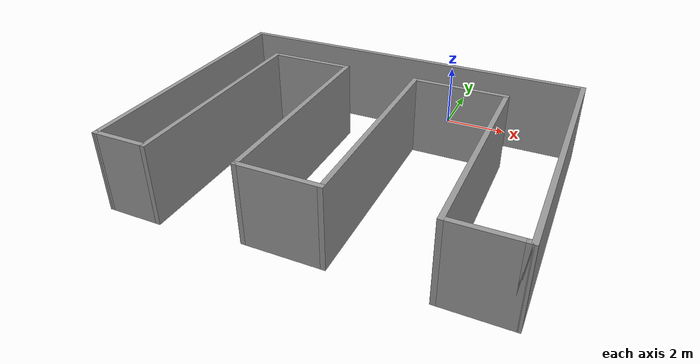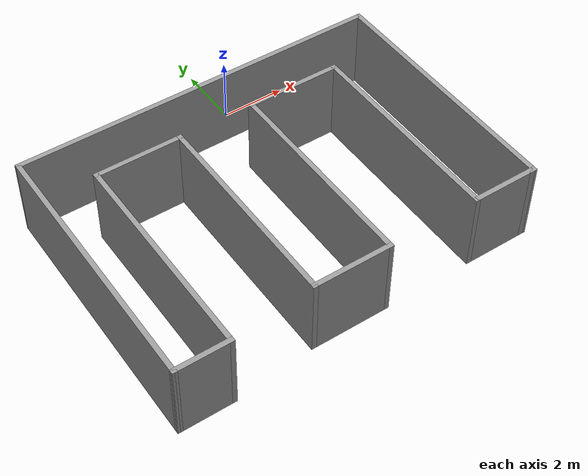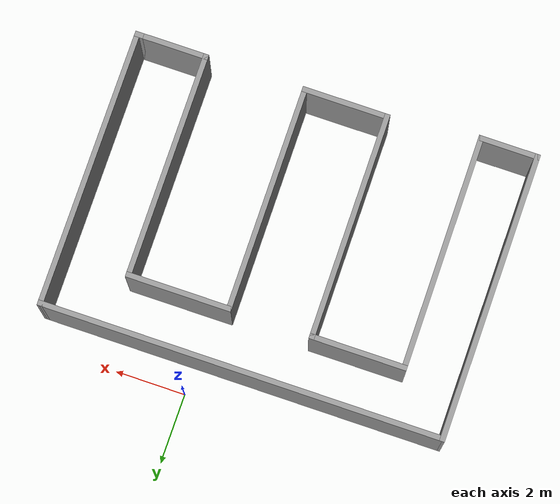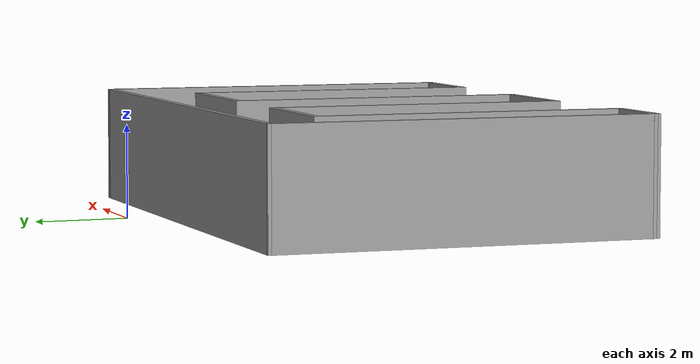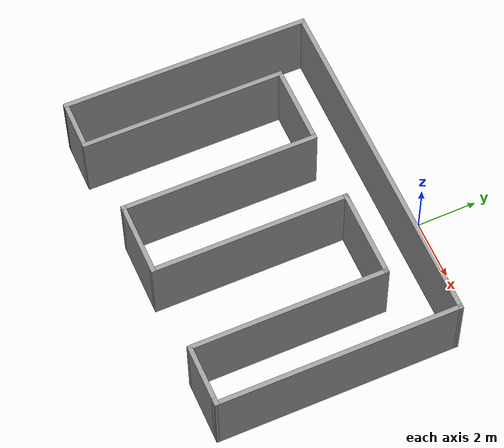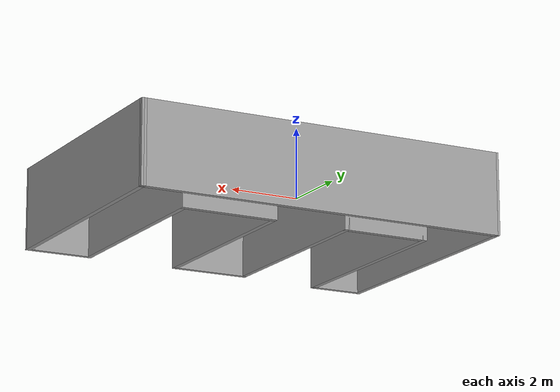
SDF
<?xml version='1.0'?>
<sdf version='1.6'>
  <model name='WorldM'>
    <pose frame=''>-1.40409 -4.88573 0 0 -0 0</pose>
    <link name='Wall_10'>
      <collision name='Wall_10_Collision'>
        <geometry>
          <box>
            <size>8.23259 0.15 2.5</size>
          </box>
        </geometry>
        <pose frame=''>0 0 1.25 0 -0 0</pose>
      </collision>
      <visual name='Wall_10_Visual'>
        <pose frame=''>0 0 1.25 0 -0 0</pose>
        <geometry>
          <box>
            <size>8.23259 0.15 2.5</size>
          </box>
        </geometry>
        <material>
          <script>
            <uri>file://media/materials/scripts/gazebo.material</uri>
            <name>Gazebo/Grey</name>
          </script>
          <ambient>1 1 1 1</ambient>
        </material>
        <meta>
          <layer>0</layer>
        </meta>
      </visual>
      <pose frame=''>-5.67492 0 0 0 0 -1.57512</pose>
    </link>
    <link name='Wall_11'>
      <collision name='Wall_11_Collision'>
        <geometry>
          <box>
            <size>1.75 0.15 2.5</size>
          </box>
        </geometry>
        <pose frame=''>0 0 1.25 0 -0 0</pose>
      </collision>
      <visual name='Wall_11_Visual'>
        <pose frame=''>0 0 1.25 0 -0 0</pose>
        <geometry>
          <box>
            <size>1.75 0.15 2.5</size>
          </box>
        </geometry>
        <material>
          <script>
            <uri>file://media/materials/scripts/gazebo.material</uri>
            <name>Gazebo/Grey</name>
          </script>
          <ambient>1 1 1 1</ambient>
        </material>
        <meta>
          <layer>0</layer>
        </meta>
      </visual>
      <pose frame=''>-4.89241 -4.04125 0 0 -0 0</pose>
    </link>
    <link name='Wall_12'>
      <collision name='Wall_12_Collision'>
        <geometry>
          <box>
            <size>6.75 0.15 2.5</size>
          </box>
        </geometry>
        <pose frame=''>0 0 1.25 0 -0 0</pose>
      </collision>
      <visual name='Wall_12_Visual'>
        <pose frame=''>0 0 1.25 0 -0 0</pose>
        <geometry>
          <box>
            <size>6.75 0.15 2.5</size>
          </box>
        </geometry>
        <material>
          <script>
            <uri>file://media/materials/scripts/gazebo.material</uri>
            <name>Gazebo/Grey</name>
          </script>
          <ambient>1 1 1 1</ambient>
        </material>
        <meta>
          <layer>0</layer>
        </meta>
      </visual>
      <pose frame=''>-4.09241 -0.741255 0 0 -0 1.5708</pose>
    </link>
    <link name='Wall_13'>
      <collision name='Wall_13_Collision'>
        <geometry>
          <box>
            <size>2.75 0.15 2.5</size>
          </box>
        </geometry>
        <pose frame=''>0 0 1.25 0 -0 0</pose>
      </collision>
      <visual name='Wall_13_Visual'>
        <pose frame=''>0 0 1.25 0 -0 0</pose>
        <geometry>
          <box>
            <size>2.75 0.15 2.5</size>
          </box>
        </geometry>
        <material>
          <script>
            <uri>file://media/materials/scripts/gazebo.material</uri>
            <name>Gazebo/Grey</name>
          </script>
          <ambient>1 1 1 1</ambient>
        </material>
        <meta>
          <layer>0</layer>
        </meta>
      </visual>
      <pose frame=''>-2.79241 2.55875 0 0 -0 0</pose>
    </link>
    <link name='Wall_14'>
      <collision name='Wall_14_Collision'>
        <geometry>
          <box>
            <size>6.5 0.15 2.5</size>
          </box>
        </geometry>
        <pose frame=''>0 0 1.25 0 -0 0</pose>
      </collision>
      <visual name='Wall_14_Visual'>
        <pose frame=''>0 0 1.25 0 -0 0</pose>
        <geometry>
          <box>
            <size>6.5 0.15 2.5</size>
          </box>
        </geometry>
        <material>
          <script>
            <uri>file://media/materials/scripts/gazebo.material</uri>
            <name>Gazebo/Grey</name>
          </script>
          <ambient>1 1 1 1</ambient>
        </material>
        <meta>
          <layer>0</layer>
        </meta>
      </visual>
      <pose frame=''>-1.49241 -0.616255 0 0 0 -1.5708</pose>
    </link>
    <link name='Wall_15'>
      <collision name='Wall_15_Collision'>
        <geometry>
          <box>
            <size>2.5 0.15 2.5</size>
          </box>
        </geometry>
        <pose frame=''>0 0 1.25 0 -0 0</pose>
      </collision>
      <visual name='Wall_15_Visual'>
        <pose frame=''>0 0 1.25 0 -0 0</pose>
        <geometry>
          <box>
            <size>2.5 0.15 2.5</size>
          </box>
        </geometry>
        <material>
          <script>
            <uri>file://media/materials/scripts/gazebo.material</uri>
            <name>Gazebo/Grey</name>
          </script>
          <ambient>1 1 1 1</ambient>
        </material>
        <meta>
          <layer>0</layer>
        </meta>
      </visual>
      <pose frame=''>-0.317412 -3.79125 0 0 -0 0</pose>
    </link>
    <link name='Wall_16'>
      <collision name='Wall_16_Collision'>
        <geometry>
          <box>
            <size>6.5 0.15 2.5</size>
          </box>
        </geometry>
        <pose frame=''>0 0 1.25 0 -0 0</pose>
      </collision>
      <visual name='Wall_16_Visual'>
        <pose frame=''>0 0 1.25 0 -0 0</pose>
        <geometry>
          <box>
            <size>6.5 0.15 2.5</size>
          </box>
        </geometry>
        <material>
          <script>
            <uri>file://media/materials/scripts/gazebo.material</uri>
            <name>Gazebo/Grey</name>
          </script>
          <ambient>1 1 1 1</ambient>
        </material>
        <meta>
          <layer>0</layer>
        </meta>
      </visual>
      <pose frame=''>0.857588 -0.616255 0 0 -0 1.5708</pose>
    </link>
    <link name='Wall_17'>
      <collision name='Wall_17_Collision'>
        <geometry>
          <box>
            <size>3 0.15 2.5</size>
          </box>
        </geometry>
        <pose frame=''>0 0 1.25 0 -0 0</pose>
      </collision>
      <visual name='Wall_17_Visual'>
        <pose frame=''>0 0 1.25 0 -0 0</pose>
        <geometry>
          <box>
            <size>3 0.15 2.5</size>
          </box>
        </geometry>
        <material>
          <script>
            <uri>file://media/materials/scripts/gazebo.material</uri>
            <name>Gazebo/Grey</name>
          </script>
          <ambient>1 1 1 1</ambient>
        </material>
        <meta>
          <layer>0</layer>
        </meta>
      </visual>
      <pose frame=''>2.28259 2.55875 0 0 -0 0</pose>
    </link>
    <link name='Wall_18'>
      <collision name='Wall_18_Collision'>
        <geometry>
          <box>
            <size>6.5 0.15 2.5</size>
          </box>
        </geometry>
        <pose frame=''>0 0 1.25 0 -0 0</pose>
      </collision>
      <visual name='Wall_18_Visual'>
        <pose frame=''>0 0 1.25 0 -0 0</pose>
        <geometry>
          <box>
            <size>6.5 0.15 2.5</size>
          </box>
        </geometry>
        <material>
          <script>
            <uri>file://media/materials/scripts/gazebo.material</uri>
            <name>Gazebo/Grey</name>
          </script>
          <ambient>1 1 1 1</ambient>
        </material>
        <meta>
          <layer>0</layer>
        </meta>
      </visual>
      <pose frame=''>3.70759 -0.616255 0 0 0 -1.5708</pose>
    </link>
    <link name='Wall_19'>
      <collision name='Wall_19_Collision'>
        <geometry>
          <box>
            <size>2.01749 0.15 2.5</size>
          </box>
        </geometry>
        <pose frame=''>0 0 1.25 0 -0 0</pose>
      </collision>
      <visual name='Wall_19_Visual'>
        <pose frame=''>0 0 1.25 0 -0 0</pose>
        <geometry>
          <box>
            <size>2.01749 0.15 2.5</size>
          </box>
        </geometry>
        <material>
          <script>
            <uri>file://media/materials/scripts/gazebo.material</uri>
            <name>Gazebo/Grey</name>
          </script>
          <ambient>1 1 1 1</ambient>
        </material>
        <meta>
          <layer>0</layer>
        </meta>
      </visual>
      <pose frame=''>4.64133 -3.79125 0 0 -0 0</pose>
    </link>
    <link name='Wall_33'>
      <collision name='Wall_33_Collision'>
        <geometry>
          <box>
            <size>11.5 0.15 2.5</size>
          </box>
        </geometry>
        <pose frame=''>0 0 1.25 0 -0 0</pose>
      </collision>
      <visual name='Wall_33_Visual'>
        <pose frame=''>0 0 1.25 0 -0 0</pose>
        <geometry>
          <box>
            <size>11.5 0.15 2.5</size>
          </box>
        </geometry>
        <material>
          <script>
            <uri>file://media/materials/scripts/gazebo.material</uri>
            <name>Gazebo/Grey</name>
          </script>
          <ambient>1 1 1 1</ambient>
        </material>
        <meta>
          <layer>0</layer>
        </meta>
      </visual>
      <pose frame=''>0.017568 4.04125 0 0 -0 0</pose>
    </link>
    <link name='Wall_35'>
      <collision name='Wall_35_Collision'>
        <geometry>
          <box>
            <size>0.25 0.15 2.5</size>
          </box>
        </geometry>
        <pose frame=''>0 0 1.25 0 -0 0</pose>
      </collision>
      <visual name='Wall_35_Visual'>
        <pose frame=''>0 0 1.25 0 -0 0</pose>
        <geometry>
          <box>
            <size>0.25 0.15 2.5</size>
          </box>
        </geometry>
        <material>
          <script>
            <uri>file://media/materials/scripts/gazebo.material</uri>
            <name>Gazebo/Grey</name>
          </script>
          <ambient>1 1 1 1</ambient>
        </material>
        <meta>
          <layer>0</layer>
        </meta>
      </visual>
      <pose frame=''>5.62508 -3.79125 0 0 -0 0</pose>
    </link>
    <link name='Wall_36'>
      <collision name='Wall_36_Collision'>
        <geometry>
          <box>
            <size>7.98253 0.15 2.5</size>
          </box>
        </geometry>
        <pose frame=''>0 0 1.25 0 -0 0</pose>
      </collision>
      <visual name='Wall_36_Visual'>
        <pose frame=''>0 0 1.25 0 -0 0</pose>
        <geometry>
          <box>
            <size>7.98253 0.15 2.5</size>
          </box>
        </geometry>
        <material>
          <script>
            <uri>file://media/materials/scripts/gazebo.material</uri>
            <name>Gazebo/Grey</name>
          </script>
          <ambient>1 1 1 1</ambient>
        </material>
        <meta>
          <layer>0</layer>
        </meta>
      </visual>
      <pose frame=''>5.68382 0.125 0 0 -0 1.56856</pose>
    </link>
    <static>1</static>
  </model>
</sdf>
